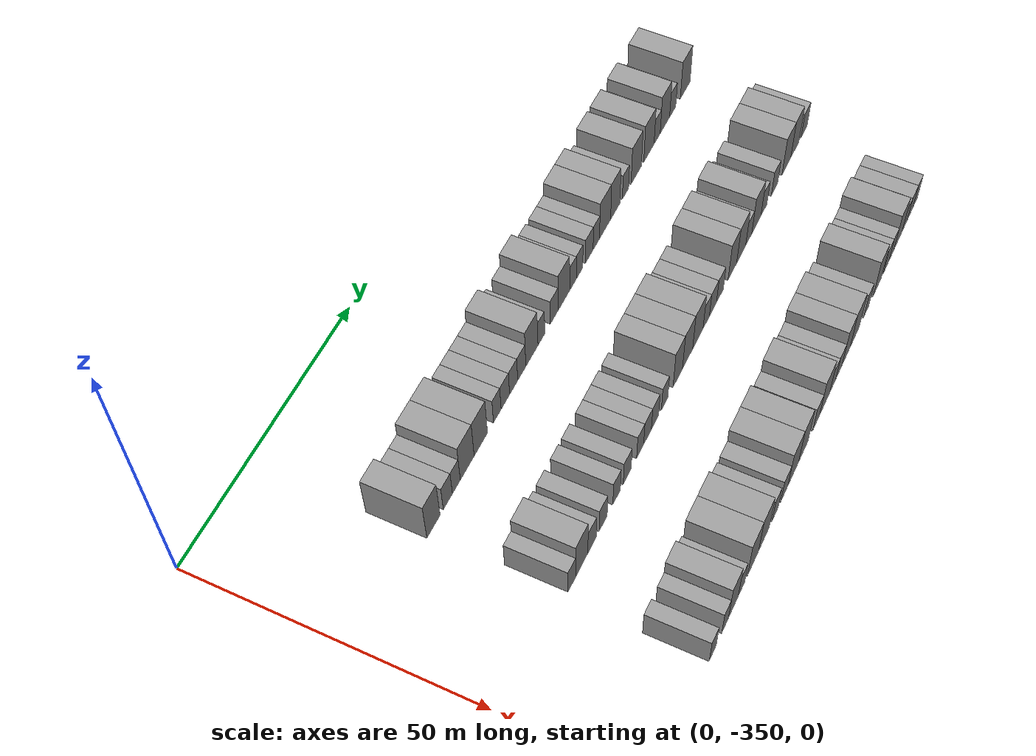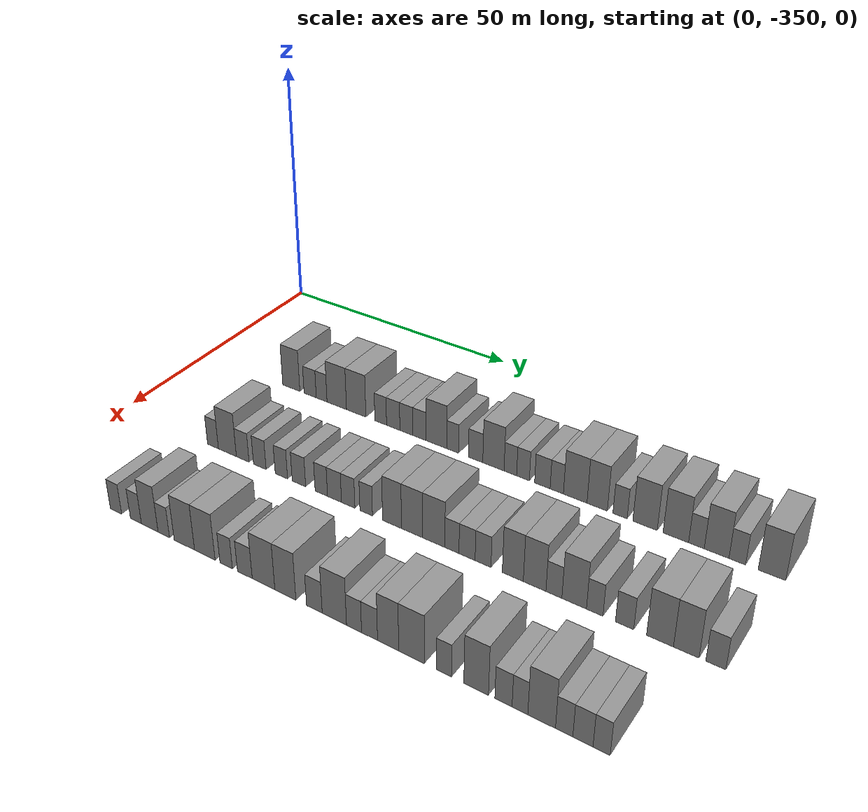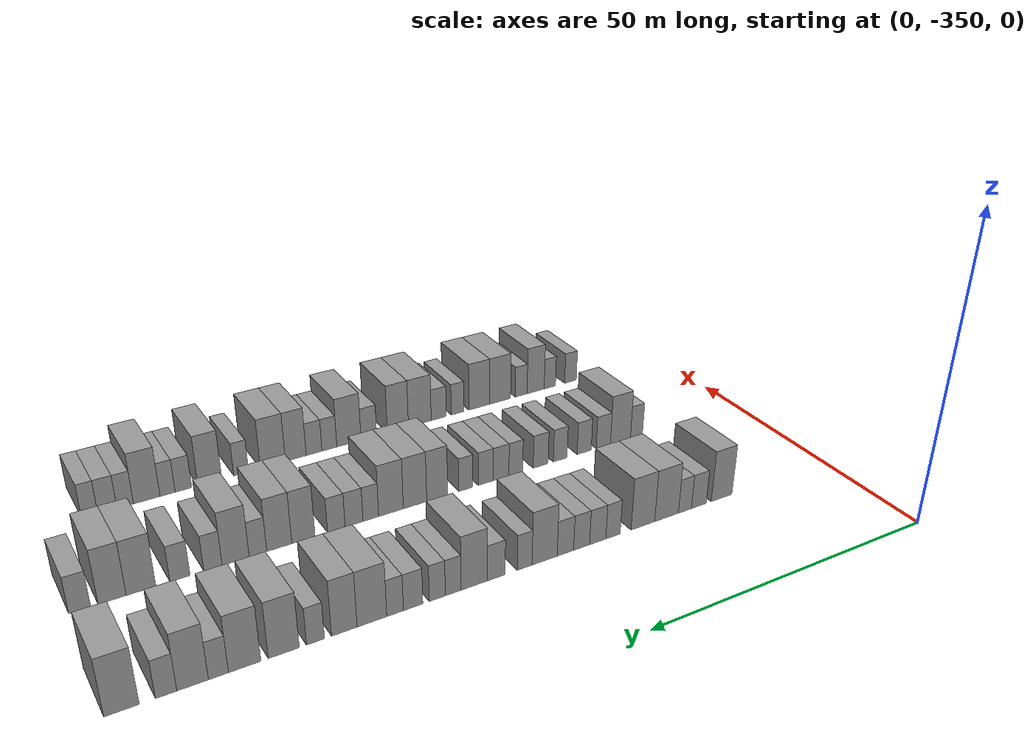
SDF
<sdf version="1.6">
 <world name="default">
  <model name="building_14">
   <static>1</static>
   <pose>25.0000 -328.6985 0 0.000000 0.000000 0.000000</pose>
   <link name="link">
    <pose>0 0 4.50 0 0 0</pose>
    <collision name="collision"><geometry><box><size>10.0000 4.1164 9.0000</size></box></geometry></collision>
    <visual name="visual">
     <cast_shadows>0</cast_shadows>
     <geometry><box><size>10.0000 4.1164 9.0000</size></box></geometry>
     <material>
      <script>
       <uri>model://grey_wall/materials/scripts</uri>
       <uri>model://grey_wall/materials/textures</uri>
       <name>vrc/grey_wall</name>
      </script>
     </material>
    </visual>
   </link>
  </model>
  <model name="building_15">
   <static>1</static>
   <pose>25.0000 -324.2007 0 0.000000 0.000000 0.000000</pose>
   <link name="link">
    <pose>0 0 3.00 0 0 0</pose>
    <collision name="collision"><geometry><box><size>10.0000 2.8793 6.0000</size></box></geometry></collision>
    <visual name="visual">
     <cast_shadows>0</cast_shadows>
     <geometry><box><size>10.0000 2.8793 6.0000</size></box></geometry>
     <material>
      <script>
       <uri>model://grey_wall/materials/scripts</uri>
       <uri>model://grey_wall/materials/textures</uri>
       <name>vrc/grey_wall</name>
      </script>
     </material>
    </visual>
   </link>
  </model>
  <model name="building_16">
   <static>1</static>
   <pose>25.0000 -321.5026 0 0.000000 0.000000 0.000000</pose>
   <link name="link">
    <pose>0 0 3.00 0 0 0</pose>
    <collision name="collision"><geometry><box><size>10.0000 2.5169 6.0000</size></box></geometry></collision>
    <visual name="visual">
     <cast_shadows>0</cast_shadows>
     <geometry><box><size>10.0000 2.5169 6.0000</size></box></geometry>
     <material>
      <script>
       <uri>model://grey_wall/materials/scripts</uri>
       <uri>model://grey_wall/materials/textures</uri>
       <name>vrc/grey_wall</name>
      </script>
     </material>
    </visual>
   </link>
  </model>
  <model name="building_17">
   <static>1</static>
   <pose>25.0000 -317.9972 0 0.000000 0.000000 0.000000</pose>
   <link name="link">
    <pose>0 0 4.50 0 0 0</pose>
    <collision name="collision"><geometry><box><size>10.0000 4.4939 9.0000</size></box></geometry></collision>
    <visual name="visual">
     <cast_shadows>0</cast_shadows>
     <geometry><box><size>10.0000 4.4939 9.0000</size></box></geometry>
     <material>
      <script>
       <uri>model://grey_wall/materials/scripts</uri>
       <uri>model://grey_wall/materials/textures</uri>
       <name>vrc/grey_wall</name>
      </script>
     </material>
    </visual>
   </link>
  </model>
  <model name="building_18">
   <static>1</static>
   <pose>25.0000 -313.5573 0 0.000000 0.000000 0.000000</pose>
   <link name="link">
    <pose>0 0 4.50 0 0 0</pose>
    <collision name="collision"><geometry><box><size>10.0000 4.3858 9.0000</size></box></geometry></collision>
    <visual name="visual">
     <cast_shadows>0</cast_shadows>
     <geometry><box><size>10.0000 4.3858 9.0000</size></box></geometry>
     <material>
      <script>
       <uri>model://grey_wall/materials/scripts</uri>
       <uri>model://grey_wall/materials/textures</uri>
       <name>vrc/grey_wall</name>
      </script>
     </material>
    </visual>
   </link>
  </model>
  <model name="building_19">
   <static>1</static>
   <pose>25.0000 -308.0744 0 0.000000 0.000000 0.000000</pose>
   <link name="link">
    <pose>0 0 3.00 0 0 0</pose>
    <collision name="collision"><geometry><box><size>10.0000 2.5801 6.0000</size></box></geometry></collision>
    <visual name="visual">
     <cast_shadows>0</cast_shadows>
     <geometry><box><size>10.0000 2.5801 6.0000</size></box></geometry>
     <material>
      <script>
       <uri>model://grey_wall/materials/scripts</uri>
       <uri>model://grey_wall/materials/textures</uri>
       <name>vrc/grey_wall</name>
      </script>
     </material>
    </visual>
   </link>
  </model>
  <model name="building_20">
   <static>1</static>
   <pose>25.0000 -305.3306 0 0.000000 0.000000 0.000000</pose>
   <link name="link">
    <pose>0 0 3.00 0 0 0</pose>
    <collision name="collision"><geometry><box><size>10.0000 2.9074 6.0000</size></box></geometry></collision>
    <visual name="visual">
     <cast_shadows>0</cast_shadows>
     <geometry><box><size>10.0000 2.9074 6.0000</size></box></geometry>
     <material>
      <script>
       <uri>model://grey_wall/materials/scripts</uri>
       <uri>model://grey_wall/materials/textures</uri>
       <name>vrc/grey_wall</name>
      </script>
     </material>
    </visual>
   </link>
  </model>
  <model name="building_21">
   <static>1</static>
   <pose>25.0000 -302.4756 0 0.000000 0.000000 0.000000</pose>
   <link name="link">
    <pose>0 0 3.00 0 0 0</pose>
    <collision name="collision"><geometry><box><size>10.0000 2.8027 6.0000</size></box></geometry></collision>
    <visual name="visual">
     <cast_shadows>0</cast_shadows>
     <geometry><box><size>10.0000 2.8027 6.0000</size></box></geometry>
     <material>
      <script>
       <uri>model://grey_wall/materials/scripts</uri>
       <uri>model://grey_wall/materials/textures</uri>
       <name>vrc/grey_wall</name>
      </script>
     </material>
    </visual>
   </link>
  </model>
  <model name="building_22">
   <static>1</static>
   <pose>25.0000 -299.6530 0 0.000000 0.000000 0.000000</pose>
   <link name="link">
    <pose>0 0 3.00 0 0 0</pose>
    <collision name="collision"><geometry><box><size>10.0000 2.8426 6.0000</size></box></geometry></collision>
    <visual name="visual">
     <cast_shadows>0</cast_shadows>
     <geometry><box><size>10.0000 2.8426 6.0000</size></box></geometry>
     <material>
      <script>
       <uri>model://grey_wall/materials/scripts</uri>
       <uri>model://grey_wall/materials/textures</uri>
       <name>vrc/grey_wall</name>
      </script>
     </material>
    </visual>
   </link>
  </model>
  <model name="building_23">
   <static>1</static>
   <pose>25.0000 -296.0908 0 0.000000 0.000000 0.000000</pose>
   <link name="link">
    <pose>0 0 4.50 0 0 0</pose>
    <collision name="collision"><geometry><box><size>10.0000 4.2818 9.0000</size></box></geometry></collision>
    <visual name="visual">
     <cast_shadows>0</cast_shadows>
     <geometry><box><size>10.0000 4.2818 9.0000</size></box></geometry>
     <material>
      <script>
       <uri>model://grey_wall/materials/scripts</uri>
       <uri>model://grey_wall/materials/textures</uri>
       <name>vrc/grey_wall</name>
      </script>
     </material>
    </visual>
   </link>
  </model>
  <model name="building_24">
   <static>1</static>
   <pose>25.0000 -292.7129 0 0.000000 0.000000 0.000000</pose>
   <link name="link">
    <pose>0 0 3.00 0 0 0</pose>
    <collision name="collision"><geometry><box><size>10.0000 2.4739 6.0000</size></box></geometry></collision>
    <visual name="visual">
     <cast_shadows>0</cast_shadows>
     <geometry><box><size>10.0000 2.4739 6.0000</size></box></geometry>
     <material>
      <script>
       <uri>model://grey_wall/materials/scripts</uri>
       <uri>model://grey_wall/materials/textures</uri>
       <name>vrc/grey_wall</name>
      </script>
     </material>
    </visual>
   </link>
  </model>
  <model name="building_25">
   <static>1</static>
   <pose>25.0000 -288.0265 0 0.000000 0.000000 0.000000</pose>
   <link name="link">
    <pose>0 0 3.00 0 0 0</pose>
    <collision name="collision"><geometry><box><size>10.0000 2.8990 6.0000</size></box></geometry></collision>
    <visual name="visual">
     <cast_shadows>0</cast_shadows>
     <geometry><box><size>10.0000 2.8990 6.0000</size></box></geometry>
     <material>
      <script>
       <uri>model://grey_wall/materials/scripts</uri>
       <uri>model://grey_wall/materials/textures</uri>
       <name>vrc/grey_wall</name>
      </script>
     </material>
    </visual>
   </link>
  </model>
  <model name="building_26">
   <static>1</static>
   <pose>25.0000 -284.4614 0 0.000000 0.000000 0.000000</pose>
   <link name="link">
    <pose>0 0 4.50 0 0 0</pose>
    <collision name="collision"><geometry><box><size>10.0000 4.2312 9.0000</size></box></geometry></collision>
    <visual name="visual">
     <cast_shadows>0</cast_shadows>
     <geometry><box><size>10.0000 4.2312 9.0000</size></box></geometry>
     <material>
      <script>
       <uri>model://grey_wall/materials/scripts</uri>
       <uri>model://grey_wall/materials/textures</uri>
       <name>vrc/grey_wall</name>
      </script>
     </material>
    </visual>
   </link>
  </model>
  <model name="building_27">
   <static>1</static>
   <pose>25.0000 -281.1152 0 0.000000 0.000000 0.000000</pose>
   <link name="link">
    <pose>0 0 3.00 0 0 0</pose>
    <collision name="collision"><geometry><box><size>10.0000 2.4614 6.0000</size></box></geometry></collision>
    <visual name="visual">
     <cast_shadows>0</cast_shadows>
     <geometry><box><size>10.0000 2.4614 6.0000</size></box></geometry>
     <material>
      <script>
       <uri>model://grey_wall/materials/scripts</uri>
       <uri>model://grey_wall/materials/textures</uri>
       <name>vrc/grey_wall</name>
      </script>
     </material>
    </visual>
   </link>
  </model>
  <model name="building_28">
   <static>1</static>
   <pose>25.0000 -278.6442 0 0.000000 0.000000 0.000000</pose>
   <link name="link">
    <pose>0 0 3.00 0 0 0</pose>
    <collision name="collision"><geometry><box><size>10.0000 2.4805 6.0000</size></box></geometry></collision>
    <visual name="visual">
     <cast_shadows>0</cast_shadows>
     <geometry><box><size>10.0000 2.4805 6.0000</size></box></geometry>
     <material>
      <script>
       <uri>model://grey_wall/materials/scripts</uri>
       <uri>model://grey_wall/materials/textures</uri>
       <name>vrc/grey_wall</name>
      </script>
     </material>
    </visual>
   </link>
  </model>
  <model name="building_29">
   <static>1</static>
   <pose>25.0000 -274.9256 0 0.000000 0.000000 0.000000</pose>
   <link name="link">
    <pose>0 0 3.00 0 0 0</pose>
    <collision name="collision"><geometry><box><size>10.0000 2.9566 6.0000</size></box></geometry></collision>
    <visual name="visual">
     <cast_shadows>0</cast_shadows>
     <geometry><box><size>10.0000 2.9566 6.0000</size></box></geometry>
     <material>
      <script>
       <uri>model://grey_wall/materials/scripts</uri>
       <uri>model://grey_wall/materials/textures</uri>
       <name>vrc/grey_wall</name>
      </script>
     </material>
    </visual>
   </link>
  </model>
  <model name="building_30">
   <static>1</static>
   <pose>25.0000 -272.1992 0 0.000000 0.000000 0.000000</pose>
   <link name="link">
    <pose>0 0 3.00 0 0 0</pose>
    <collision name="collision"><geometry><box><size>10.0000 2.4963 6.0000</size></box></geometry></collision>
    <visual name="visual">
     <cast_shadows>0</cast_shadows>
     <geometry><box><size>10.0000 2.4963 6.0000</size></box></geometry>
     <material>
      <script>
       <uri>model://grey_wall/materials/scripts</uri>
       <uri>model://grey_wall/materials/textures</uri>
       <name>vrc/grey_wall</name>
      </script>
     </material>
    </visual>
   </link>
  </model>
  <model name="building_31">
   <static>1</static>
   <pose>25.0000 -268.7673 0 0.000000 0.000000 0.000000</pose>
   <link name="link">
    <pose>0 0 4.50 0 0 0</pose>
    <collision name="collision"><geometry><box><size>10.0000 4.3674 9.0000</size></box></geometry></collision>
    <visual name="visual">
     <cast_shadows>0</cast_shadows>
     <geometry><box><size>10.0000 4.3674 9.0000</size></box></geometry>
     <material>
      <script>
       <uri>model://grey_wall/materials/scripts</uri>
       <uri>model://grey_wall/materials/textures</uri>
       <name>vrc/grey_wall</name>
      </script>
     </material>
    </visual>
   </link>
  </model>
  <model name="building_32">
   <static>1</static>
   <pose>25.0000 -264.7406 0 0.000000 0.000000 0.000000</pose>
   <link name="link">
    <pose>0 0 4.50 0 0 0</pose>
    <collision name="collision"><geometry><box><size>10.0000 3.6861 9.0000</size></box></geometry></collision>
    <visual name="visual">
     <cast_shadows>0</cast_shadows>
     <geometry><box><size>10.0000 3.6861 9.0000</size></box></geometry>
     <material>
      <script>
       <uri>model://grey_wall/materials/scripts</uri>
       <uri>model://grey_wall/materials/textures</uri>
       <name>vrc/grey_wall</name>
      </script>
     </material>
    </visual>
   </link>
  </model>
  <model name="building_33">
   <static>1</static>
   <pose>25.0000 -260.6322 0 0.000000 0.000000 0.000000</pose>
   <link name="link">
    <pose>0 0 3.00 0 0 0</pose>
    <collision name="collision"><geometry><box><size>10.0000 2.5305 6.0000</size></box></geometry></collision>
    <visual name="visual">
     <cast_shadows>0</cast_shadows>
     <geometry><box><size>10.0000 2.5305 6.0000</size></box></geometry>
     <material>
      <script>
       <uri>model://grey_wall/materials/scripts</uri>
       <uri>model://grey_wall/materials/textures</uri>
       <name>vrc/grey_wall</name>
      </script>
     </material>
    </visual>
   </link>
  </model>
  <model name="building_34">
   <static>1</static>
   <pose>25.0000 -256.2392 0 0.000000 0.000000 0.000000</pose>
   <link name="link">
    <pose>0 0 4.50 0 0 0</pose>
    <collision name="collision"><geometry><box><size>10.0000 4.2555 9.0000</size></box></geometry></collision>
    <visual name="visual">
     <cast_shadows>0</cast_shadows>
     <geometry><box><size>10.0000 4.2555 9.0000</size></box></geometry>
     <material>
      <script>
       <uri>model://grey_wall/materials/scripts</uri>
       <uri>model://grey_wall/materials/textures</uri>
       <name>vrc/grey_wall</name>
      </script>
     </material>
    </visual>
   </link>
  </model>
  <model name="building_35">
   <static>1</static>
   <pose>25.0000 -250.9483 0 0.000000 0.000000 0.000000</pose>
   <link name="link">
    <pose>0 0 4.50 0 0 0</pose>
    <collision name="collision"><geometry><box><size>10.0000 4.3264 9.0000</size></box></geometry></collision>
    <visual name="visual">
     <cast_shadows>0</cast_shadows>
     <geometry><box><size>10.0000 4.3264 9.0000</size></box></geometry>
     <material>
      <script>
       <uri>model://grey_wall/materials/scripts</uri>
       <uri>model://grey_wall/materials/textures</uri>
       <name>vrc/grey_wall</name>
      </script>
     </material>
    </visual>
   </link>
  </model>
  <model name="building_36">
   <static>1</static>
   <pose>25.0000 -247.4791 0 0.000000 0.000000 0.000000</pose>
   <link name="link">
    <pose>0 0 3.00 0 0 0</pose>
    <collision name="collision"><geometry><box><size>10.0000 2.6121 6.0000</size></box></geometry></collision>
    <visual name="visual">
     <cast_shadows>0</cast_shadows>
     <geometry><box><size>10.0000 2.6121 6.0000</size></box></geometry>
     <material>
      <script>
       <uri>model://grey_wall/materials/scripts</uri>
       <uri>model://grey_wall/materials/textures</uri>
       <name>vrc/grey_wall</name>
      </script>
     </material>
    </visual>
   </link>
  </model>
  <model name="building_37">
   <static>1</static>
   <pose>25.0000 -244.1470 0 0.000000 0.000000 0.000000</pose>
   <link name="link">
    <pose>0 0 4.50 0 0 0</pose>
    <collision name="collision"><geometry><box><size>10.0000 4.0521 9.0000</size></box></geometry></collision>
    <visual name="visual">
     <cast_shadows>0</cast_shadows>
     <geometry><box><size>10.0000 4.0521 9.0000</size></box></geometry>
     <material>
      <script>
       <uri>model://grey_wall/materials/scripts</uri>
       <uri>model://grey_wall/materials/textures</uri>
       <name>vrc/grey_wall</name>
      </script>
     </material>
    </visual>
   </link>
  </model>
  <model name="building_38">
   <static>1</static>
   <pose>25.0000 -240.7770 0 0.000000 0.000000 0.000000</pose>
   <link name="link">
    <pose>0 0 3.00 0 0 0</pose>
    <collision name="collision"><geometry><box><size>10.0000 2.6880 6.0000</size></box></geometry></collision>
    <visual name="visual">
     <cast_shadows>0</cast_shadows>
     <geometry><box><size>10.0000 2.6880 6.0000</size></box></geometry>
     <material>
      <script>
       <uri>model://grey_wall/materials/scripts</uri>
       <uri>model://grey_wall/materials/textures</uri>
       <name>vrc/grey_wall</name>
      </script>
     </material>
    </visual>
   </link>
  </model>
  <model name="building_39">
   <static>1</static>
   <pose>25.0000 -235.2704 0 0.000000 0.000000 0.000000</pose>
   <link name="link">
    <pose>0 0 4.50 0 0 0</pose>
    <collision name="collision"><geometry><box><size>10.0000 4.3251 9.0000</size></box></geometry></collision>
    <visual name="visual">
     <cast_shadows>0</cast_shadows>
     <geometry><box><size>10.0000 4.3251 9.0000</size></box></geometry>
     <material>
      <script>
       <uri>model://grey_wall/materials/scripts</uri>
       <uri>model://grey_wall/materials/textures</uri>
       <name>vrc/grey_wall</name>
      </script>
     </material>
    </visual>
   </link>
  </model>
  <model name="building_204">
   <static>1</static>
   <pose>47.0000 -328.5744 0 0.000000 0.000000 0.000000</pose>
   <link name="link">
    <pose>0 0 3.00 0 0 0</pose>
    <collision name="collision"><geometry><box><size>10.0000 2.5163 6.0000</size></box></geometry></collision>
    <visual name="visual">
     <cast_shadows>0</cast_shadows>
     <geometry><box><size>10.0000 2.5163 6.0000</size></box></geometry>
     <material>
      <script>
       <uri>model://grey_wall/materials/scripts</uri>
       <uri>model://grey_wall/materials/textures</uri>
       <name>vrc/grey_wall</name>
      </script>
     </material>
    </visual>
   </link>
  </model>
  <model name="building_205">
   <static>1</static>
   <pose>47.0000 -325.2484 0 0.000000 0.000000 0.000000</pose>
   <link name="link">
    <pose>0 0 4.50 0 0 0</pose>
    <collision name="collision"><geometry><box><size>10.0000 4.1357 9.0000</size></box></geometry></collision>
    <visual name="visual">
     <cast_shadows>0</cast_shadows>
     <geometry><box><size>10.0000 4.1357 9.0000</size></box></geometry>
     <material>
      <script>
       <uri>model://grey_wall/materials/scripts</uri>
       <uri>model://grey_wall/materials/textures</uri>
       <name>vrc/grey_wall</name>
      </script>
     </material>
    </visual>
   </link>
  </model>
  <model name="building_206">
   <static>1</static>
   <pose>47.0000 -321.7413 0 0.000000 0.000000 0.000000</pose>
   <link name="link">
    <pose>0 0 3.00 0 0 0</pose>
    <collision name="collision"><geometry><box><size>10.0000 2.8787 6.0000</size></box></geometry></collision>
    <visual name="visual">
     <cast_shadows>0</cast_shadows>
     <geometry><box><size>10.0000 2.8787 6.0000</size></box></geometry>
     <material>
      <script>
       <uri>model://grey_wall/materials/scripts</uri>
       <uri>model://grey_wall/materials/textures</uri>
       <name>vrc/grey_wall</name>
      </script>
     </material>
    </visual>
   </link>
  </model>
  <model name="building_207">
   <static>1</static>
   <pose>47.0000 -317.8992 0 0.000000 0.000000 0.000000</pose>
   <link name="link">
    <pose>0 0 3.00 0 0 0</pose>
    <collision name="collision"><geometry><box><size>10.0000 2.8054 6.0000</size></box></geometry></collision>
    <visual name="visual">
     <cast_shadows>0</cast_shadows>
     <geometry><box><size>10.0000 2.8054 6.0000</size></box></geometry>
     <material>
      <script>
       <uri>model://grey_wall/materials/scripts</uri>
       <uri>model://grey_wall/materials/textures</uri>
       <name>vrc/grey_wall</name>
      </script>
     </material>
    </visual>
   </link>
  </model>
  <model name="building_208">
   <static>1</static>
   <pose>47.0000 -313.1531 0 0.000000 0.000000 0.000000</pose>
   <link name="link">
    <pose>0 0 3.00 0 0 0</pose>
    <collision name="collision"><geometry><box><size>10.0000 2.6868 6.0000</size></box></geometry></collision>
    <visual name="visual">
     <cast_shadows>0</cast_shadows>
     <geometry><box><size>10.0000 2.6868 6.0000</size></box></geometry>
     <material>
      <script>
       <uri>model://grey_wall/materials/scripts</uri>
       <uri>model://grey_wall/materials/textures</uri>
       <name>vrc/grey_wall</name>
      </script>
     </material>
    </visual>
   </link>
  </model>
  <model name="building_209">
   <static>1</static>
   <pose>47.0000 -309.3720 0 0.000000 0.000000 0.000000</pose>
   <link name="link">
    <pose>0 0 3.00 0 0 0</pose>
    <collision name="collision"><geometry><box><size>10.0000 2.8755 6.0000</size></box></geometry></collision>
    <visual name="visual">
     <cast_shadows>0</cast_shadows>
     <geometry><box><size>10.0000 2.8755 6.0000</size></box></geometry>
     <material>
      <script>
       <uri>model://grey_wall/materials/scripts</uri>
       <uri>model://grey_wall/materials/textures</uri>
       <name>vrc/grey_wall</name>
      </script>
     </material>
    </visual>
   </link>
  </model>
  <model name="building_210">
   <static>1</static>
   <pose>47.0000 -304.6387 0 0.000000 0.000000 0.000000</pose>
   <link name="link">
    <pose>0 0 3.00 0 0 0</pose>
    <collision name="collision"><geometry><box><size>10.0000 2.5910 6.0000</size></box></geometry></collision>
    <visual name="visual">
     <cast_shadows>0</cast_shadows>
     <geometry><box><size>10.0000 2.5910 6.0000</size></box></geometry>
     <material>
      <script>
       <uri>model://grey_wall/materials/scripts</uri>
       <uri>model://grey_wall/materials/textures</uri>
       <name>vrc/grey_wall</name>
      </script>
     </material>
    </visual>
   </link>
  </model>
  <model name="building_211">
   <static>1</static>
   <pose>47.0000 -301.9009 0 0.000000 0.000000 0.000000</pose>
   <link name="link">
    <pose>0 0 3.00 0 0 0</pose>
    <collision name="collision"><geometry><box><size>10.0000 2.8846 6.0000</size></box></geometry></collision>
    <visual name="visual">
     <cast_shadows>0</cast_shadows>
     <geometry><box><size>10.0000 2.8846 6.0000</size></box></geometry>
     <material>
      <script>
       <uri>model://grey_wall/materials/scripts</uri>
       <uri>model://grey_wall/materials/textures</uri>
       <name>vrc/grey_wall</name>
      </script>
     </material>
    </visual>
   </link>
  </model>
  <model name="building_212">
   <static>1</static>
   <pose>47.0000 -299.0855 0 0.000000 0.000000 0.000000</pose>
   <link name="link">
    <pose>0 0 3.00 0 0 0</pose>
    <collision name="collision"><geometry><box><size>10.0000 2.7462 6.0000</size></box></geometry></collision>
    <visual name="visual">
     <cast_shadows>0</cast_shadows>
     <geometry><box><size>10.0000 2.7462 6.0000</size></box></geometry>
     <material>
      <script>
       <uri>model://grey_wall/materials/scripts</uri>
       <uri>model://grey_wall/materials/textures</uri>
       <name>vrc/grey_wall</name>
      </script>
     </material>
    </visual>
   </link>
  </model>
  <model name="building_213">
   <static>1</static>
   <pose>47.0000 -295.4514 0 0.000000 0.000000 0.000000</pose>
   <link name="link">
    <pose>0 0 3.00 0 0 0</pose>
    <collision name="collision"><geometry><box><size>10.0000 2.5219 6.0000</size></box></geometry></collision>
    <visual name="visual">
     <cast_shadows>0</cast_shadows>
     <geometry><box><size>10.0000 2.5219 6.0000</size></box></geometry>
     <material>
      <script>
       <uri>model://grey_wall/materials/scripts</uri>
       <uri>model://grey_wall/materials/textures</uri>
       <name>vrc/grey_wall</name>
      </script>
     </material>
    </visual>
   </link>
  </model>
  <model name="building_214">
   <static>1</static>
   <pose>47.0000 -290.3478 0 0.000000 0.000000 0.000000</pose>
   <link name="link">
    <pose>0 0 4.50 0 0 0</pose>
    <collision name="collision"><geometry><box><size>10.0000 3.6854 9.0000</size></box></geometry></collision>
    <visual name="visual">
     <cast_shadows>0</cast_shadows>
     <geometry><box><size>10.0000 3.6854 9.0000</size></box></geometry>
     <material>
      <script>
       <uri>model://grey_wall/materials/scripts</uri>
       <uri>model://grey_wall/materials/textures</uri>
       <name>vrc/grey_wall</name>
      </script>
     </material>
    </visual>
   </link>
  </model>
  <model name="building_215">
   <static>1</static>
   <pose>47.0000 -286.4826 0 0.000000 0.000000 0.000000</pose>
   <link name="link">
    <pose>0 0 4.50 0 0 0</pose>
    <collision name="collision"><geometry><box><size>10.0000 4.0450 9.0000</size></box></geometry></collision>
    <visual name="visual">
     <cast_shadows>0</cast_shadows>
     <geometry><box><size>10.0000 4.0450 9.0000</size></box></geometry>
     <material>
      <script>
       <uri>model://grey_wall/materials/scripts</uri>
       <uri>model://grey_wall/materials/textures</uri>
       <name>vrc/grey_wall</name>
      </script>
     </material>
    </visual>
   </link>
  </model>
  <model name="building_216">
   <static>1</static>
   <pose>47.0000 -282.3678 0 0.000000 0.000000 0.000000</pose>
   <link name="link">
    <pose>0 0 4.50 0 0 0</pose>
    <collision name="collision"><geometry><box><size>10.0000 4.1846 9.0000</size></box></geometry></collision>
    <visual name="visual">
     <cast_shadows>0</cast_shadows>
     <geometry><box><size>10.0000 4.1846 9.0000</size></box></geometry>
     <material>
      <script>
       <uri>model://grey_wall/materials/scripts</uri>
       <uri>model://grey_wall/materials/textures</uri>
       <name>vrc/grey_wall</name>
      </script>
     </material>
    </visual>
   </link>
  </model>
  <model name="building_217">
   <static>1</static>
   <pose>47.0000 -278.9745 0 0.000000 0.000000 0.000000</pose>
   <link name="link">
    <pose>0 0 3.00 0 0 0</pose>
    <collision name="collision"><geometry><box><size>10.0000 2.6021 6.0000</size></box></geometry></collision>
    <visual name="visual">
     <cast_shadows>0</cast_shadows>
     <geometry><box><size>10.0000 2.6021 6.0000</size></box></geometry>
     <material>
      <script>
       <uri>model://grey_wall/materials/scripts</uri>
       <uri>model://grey_wall/materials/textures</uri>
       <name>vrc/grey_wall</name>
      </script>
     </material>
    </visual>
   </link>
  </model>
  <model name="building_218">
   <static>1</static>
   <pose>47.0000 -276.2022 0 0.000000 0.000000 0.000000</pose>
   <link name="link">
    <pose>0 0 3.00 0 0 0</pose>
    <collision name="collision"><geometry><box><size>10.0000 2.9424 6.0000</size></box></geometry></collision>
    <visual name="visual">
     <cast_shadows>0</cast_shadows>
     <geometry><box><size>10.0000 2.9424 6.0000</size></box></geometry>
     <material>
      <script>
       <uri>model://grey_wall/materials/scripts</uri>
       <uri>model://grey_wall/materials/textures</uri>
       <name>vrc/grey_wall</name>
      </script>
     </material>
    </visual>
   </link>
  </model>
  <model name="building_219">
   <static>1</static>
   <pose>47.0000 -273.3032 0 0.000000 0.000000 0.000000</pose>
   <link name="link">
    <pose>0 0 3.00 0 0 0</pose>
    <collision name="collision"><geometry><box><size>10.0000 2.8556 6.0000</size></box></geometry></collision>
    <visual name="visual">
     <cast_shadows>0</cast_shadows>
     <geometry><box><size>10.0000 2.8556 6.0000</size></box></geometry>
     <material>
      <script>
       <uri>model://grey_wall/materials/scripts</uri>
       <uri>model://grey_wall/materials/textures</uri>
       <name>vrc/grey_wall</name>
      </script>
     </material>
    </visual>
   </link>
  </model>
  <model name="building_220">
   <static>1</static>
   <pose>47.0000 -268.0409 0 0.000000 0.000000 0.000000</pose>
   <link name="link">
    <pose>0 0 4.50 0 0 0</pose>
    <collision name="collision"><geometry><box><size>10.0000 3.6691 9.0000</size></box></geometry></collision>
    <visual name="visual">
     <cast_shadows>0</cast_shadows>
     <geometry><box><size>10.0000 3.6691 9.0000</size></box></geometry>
     <material>
      <script>
       <uri>model://grey_wall/materials/scripts</uri>
       <uri>model://grey_wall/materials/textures</uri>
       <name>vrc/grey_wall</name>
      </script>
     </material>
    </visual>
   </link>
  </model>
  <model name="building_221">
   <static>1</static>
   <pose>47.0000 -264.2662 0 0.000000 0.000000 0.000000</pose>
   <link name="link">
    <pose>0 0 4.50 0 0 0</pose>
    <collision name="collision"><geometry><box><size>10.0000 3.8802 9.0000</size></box></geometry></collision>
    <visual name="visual">
     <cast_shadows>0</cast_shadows>
     <geometry><box><size>10.0000 3.8802 9.0000</size></box></geometry>
     <material>
      <script>
       <uri>model://grey_wall/materials/scripts</uri>
       <uri>model://grey_wall/materials/textures</uri>
       <name>vrc/grey_wall</name>
      </script>
     </material>
    </visual>
   </link>
  </model>
  <model name="building_222">
   <static>1</static>
   <pose>47.0000 -260.9822 0 0.000000 0.000000 0.000000</pose>
   <link name="link">
    <pose>0 0 3.00 0 0 0</pose>
    <collision name="collision"><geometry><box><size>10.0000 2.6878 6.0000</size></box></geometry></collision>
    <visual name="visual">
     <cast_shadows>0</cast_shadows>
     <geometry><box><size>10.0000 2.6878 6.0000</size></box></geometry>
     <material>
      <script>
       <uri>model://grey_wall/materials/scripts</uri>
       <uri>model://grey_wall/materials/textures</uri>
       <name>vrc/grey_wall</name>
      </script>
     </material>
    </visual>
   </link>
  </model>
  <model name="building_223">
   <static>1</static>
   <pose>47.0000 -257.6058 0 0.000000 0.000000 0.000000</pose>
   <link name="link">
    <pose>0 0 4.50 0 0 0</pose>
    <collision name="collision"><geometry><box><size>10.0000 4.0650 9.0000</size></box></geometry></collision>
    <visual name="visual">
     <cast_shadows>0</cast_shadows>
     <geometry><box><size>10.0000 4.0650 9.0000</size></box></geometry>
     <material>
      <script>
       <uri>model://grey_wall/materials/scripts</uri>
       <uri>model://grey_wall/materials/textures</uri>
       <name>vrc/grey_wall</name>
      </script>
     </material>
    </visual>
   </link>
  </model>
  <model name="building_224">
   <static>1</static>
   <pose>47.0000 -254.2306 0 0.000000 0.000000 0.000000</pose>
   <link name="link">
    <pose>0 0 3.00 0 0 0</pose>
    <collision name="collision"><geometry><box><size>10.0000 2.6854 6.0000</size></box></geometry></collision>
    <visual name="visual">
     <cast_shadows>0</cast_shadows>
     <geometry><box><size>10.0000 2.6854 6.0000</size></box></geometry>
     <material>
      <script>
       <uri>model://grey_wall/materials/scripts</uri>
       <uri>model://grey_wall/materials/textures</uri>
       <name>vrc/grey_wall</name>
      </script>
     </material>
    </visual>
   </link>
  </model>
  <model name="building_225">
   <static>1</static>
   <pose>47.0000 -249.4381 0 0.000000 0.000000 0.000000</pose>
   <link name="link">
    <pose>0 0 3.00 0 0 0</pose>
    <collision name="collision"><geometry><box><size>10.0000 2.8995 6.0000</size></box></geometry></collision>
    <visual name="visual">
     <cast_shadows>0</cast_shadows>
     <geometry><box><size>10.0000 2.8995 6.0000</size></box></geometry>
     <material>
      <script>
       <uri>model://grey_wall/materials/scripts</uri>
       <uri>model://grey_wall/materials/textures</uri>
       <name>vrc/grey_wall</name>
      </script>
     </material>
    </visual>
   </link>
  </model>
  <model name="building_226">
   <static>1</static>
   <pose>47.0000 -243.9204 0 0.000000 0.000000 0.000000</pose>
   <link name="link">
    <pose>0 0 4.50 0 0 0</pose>
    <collision name="collision"><geometry><box><size>10.0000 4.1358 9.0000</size></box></geometry></collision>
    <visual name="visual">
     <cast_shadows>0</cast_shadows>
     <geometry><box><size>10.0000 4.1358 9.0000</size></box></geometry>
     <material>
      <script>
       <uri>model://grey_wall/materials/scripts</uri>
       <uri>model://grey_wall/materials/textures</uri>
       <name>vrc/grey_wall</name>
      </script>
     </material>
    </visual>
   </link>
  </model>
  <model name="building_227">
   <static>1</static>
   <pose>47.0000 -239.9258 0 0.000000 0.000000 0.000000</pose>
   <link name="link">
    <pose>0 0 4.50 0 0 0</pose>
    <collision name="collision"><geometry><box><size>10.0000 3.8535 9.0000</size></box></geometry></collision>
    <visual name="visual">
     <cast_shadows>0</cast_shadows>
     <geometry><box><size>10.0000 3.8535 9.0000</size></box></geometry>
     <material>
      <script>
       <uri>model://grey_wall/materials/scripts</uri>
       <uri>model://grey_wall/materials/textures</uri>
       <name>vrc/grey_wall</name>
      </script>
     </material>
    </visual>
   </link>
  </model>
  <model name="building_228">
   <static>1</static>
   <pose>47.0000 -235.5267 0 0.000000 0.000000 0.000000</pose>
   <link name="link">
    <pose>0 0 3.00 0 0 0</pose>
    <collision name="collision"><geometry><box><size>10.0000 2.9448 6.0000</size></box></geometry></collision>
    <visual name="visual">
     <cast_shadows>0</cast_shadows>
     <geometry><box><size>10.0000 2.9448 6.0000</size></box></geometry>
     <material>
      <script>
       <uri>model://grey_wall/materials/scripts</uri>
       <uri>model://grey_wall/materials/textures</uri>
       <name>vrc/grey_wall</name>
      </script>
     </material>
    </visual>
   </link>
  </model>
  <model name="building_387">
   <static>1</static>
   <pose>69.0000 -329.8104 0 0.000000 0.000000 0.000000</pose>
   <link name="link">
    <pose>0 0 3.00 0 0 0</pose>
    <collision name="collision"><geometry><box><size>10.0000 2.5586 6.0000</size></box></geometry></collision>
    <visual name="visual">
     <cast_shadows>0</cast_shadows>
     <geometry><box><size>10.0000 2.5586 6.0000</size></box></geometry>
     <material>
      <script>
       <uri>model://grey_wall/materials/scripts</uri>
       <uri>model://grey_wall/materials/textures</uri>
       <name>vrc/grey_wall</name>
      </script>
     </material>
    </visual>
   </link>
  </model>
  <model name="building_388">
   <static>1</static>
   <pose>69.0000 -325.3115 0 0.000000 0.000000 0.000000</pose>
   <link name="link">
    <pose>0 0 3.00 0 0 0</pose>
    <collision name="collision"><geometry><box><size>10.0000 2.4393 6.0000</size></box></geometry></collision>
    <visual name="visual">
     <cast_shadows>0</cast_shadows>
     <geometry><box><size>10.0000 2.4393 6.0000</size></box></geometry>
     <material>
      <script>
       <uri>model://grey_wall/materials/scripts</uri>
       <uri>model://grey_wall/materials/textures</uri>
       <name>vrc/grey_wall</name>
      </script>
     </material>
    </visual>
   </link>
  </model>
  <model name="building_389">
   <static>1</static>
   <pose>69.0000 -322.2598 0 0.000000 0.000000 0.000000</pose>
   <link name="link">
    <pose>0 0 4.50 0 0 0</pose>
    <collision name="collision"><geometry><box><size>10.0000 3.6642 9.0000</size></box></geometry></collision>
    <visual name="visual">
     <cast_shadows>0</cast_shadows>
     <geometry><box><size>10.0000 3.6642 9.0000</size></box></geometry>
     <material>
      <script>
       <uri>model://grey_wall/materials/scripts</uri>
       <uri>model://grey_wall/materials/textures</uri>
       <name>vrc/grey_wall</name>
      </script>
     </material>
    </visual>
   </link>
  </model>
  <model name="building_390">
   <static>1</static>
   <pose>69.0000 -319.1810 0 0.000000 0.000000 0.000000</pose>
   <link name="link">
    <pose>0 0 3.00 0 0 0</pose>
    <collision name="collision"><geometry><box><size>10.0000 2.4932 6.0000</size></box></geometry></collision>
    <visual name="visual">
     <cast_shadows>0</cast_shadows>
     <geometry><box><size>10.0000 2.4932 6.0000</size></box></geometry>
     <material>
      <script>
       <uri>model://grey_wall/materials/scripts</uri>
       <uri>model://grey_wall/materials/textures</uri>
       <name>vrc/grey_wall</name>
      </script>
     </material>
    </visual>
   </link>
  </model>
  <model name="building_391">
   <static>1</static>
   <pose>69.0000 -314.7797 0 0.000000 0.000000 0.000000</pose>
   <link name="link">
    <pose>0 0 4.50 0 0 0</pose>
    <collision name="collision"><geometry><box><size>10.0000 4.3094 9.0000</size></box></geometry></collision>
    <visual name="visual">
     <cast_shadows>0</cast_shadows>
     <geometry><box><size>10.0000 4.3094 9.0000</size></box></geometry>
     <material>
      <script>
       <uri>model://grey_wall/materials/scripts</uri>
       <uri>model://grey_wall/materials/textures</uri>
       <name>vrc/grey_wall</name>
      </script>
     </material>
    </visual>
   </link>
  </model>
  <model name="building_392">
   <static>1</static>
   <pose>69.0000 -310.4899 0 0.000000 0.000000 0.000000</pose>
   <link name="link">
    <pose>0 0 4.50 0 0 0</pose>
    <collision name="collision"><geometry><box><size>10.0000 4.2702 9.0000</size></box></geometry></collision>
    <visual name="visual">
     <cast_shadows>0</cast_shadows>
     <geometry><box><size>10.0000 4.2702 9.0000</size></box></geometry>
     <material>
      <script>
       <uri>model://grey_wall/materials/scripts</uri>
       <uri>model://grey_wall/materials/textures</uri>
       <name>vrc/grey_wall</name>
      </script>
     </material>
    </visual>
   </link>
  </model>
  <model name="building_393">
   <static>1</static>
   <pose>69.0000 -306.0894 0 0.000000 0.000000 0.000000</pose>
   <link name="link">
    <pose>0 0 3.00 0 0 0</pose>
    <collision name="collision"><geometry><box><size>10.0000 2.5307 6.0000</size></box></geometry></collision>
    <visual name="visual">
     <cast_shadows>0</cast_shadows>
     <geometry><box><size>10.0000 2.5307 6.0000</size></box></geometry>
     <material>
      <script>
       <uri>model://grey_wall/materials/scripts</uri>
       <uri>model://grey_wall/materials/textures</uri>
       <name>vrc/grey_wall</name>
      </script>
     </material>
    </visual>
   </link>
  </model>
  <model name="building_394">
   <static>1</static>
   <pose>69.0000 -302.3524 0 0.000000 0.000000 0.000000</pose>
   <link name="link">
    <pose>0 0 3.00 0 0 0</pose>
    <collision name="collision"><geometry><box><size>10.0000 2.9433 6.0000</size></box></geometry></collision>
    <visual name="visual">
     <cast_shadows>0</cast_shadows>
     <geometry><box><size>10.0000 2.9433 6.0000</size></box></geometry>
     <material>
      <script>
       <uri>model://grey_wall/materials/scripts</uri>
       <uri>model://grey_wall/materials/textures</uri>
       <name>vrc/grey_wall</name>
      </script>
     </material>
    </visual>
   </link>
  </model>
  <model name="building_395">
   <static>1</static>
   <pose>69.0000 -298.6697 0 0.000000 0.000000 0.000000</pose>
   <link name="link">
    <pose>0 0 4.50 0 0 0</pose>
    <collision name="collision"><geometry><box><size>10.0000 4.4222 9.0000</size></box></geometry></collision>
    <visual name="visual">
     <cast_shadows>0</cast_shadows>
     <geometry><box><size>10.0000 4.4222 9.0000</size></box></geometry>
     <material>
      <script>
       <uri>model://grey_wall/materials/scripts</uri>
       <uri>model://grey_wall/materials/textures</uri>
       <name>vrc/grey_wall</name>
      </script>
     </material>
    </visual>
   </link>
  </model>
  <model name="building_396">
   <static>1</static>
   <pose>69.0000 -294.4493 0 0.000000 0.000000 0.000000</pose>
   <link name="link">
    <pose>0 0 4.50 0 0 0</pose>
    <collision name="collision"><geometry><box><size>10.0000 4.0186 9.0000</size></box></geometry></collision>
    <visual name="visual">
     <cast_shadows>0</cast_shadows>
     <geometry><box><size>10.0000 4.0186 9.0000</size></box></geometry>
     <material>
      <script>
       <uri>model://grey_wall/materials/scripts</uri>
       <uri>model://grey_wall/materials/textures</uri>
       <name>vrc/grey_wall</name>
      </script>
     </material>
    </visual>
   </link>
  </model>
  <model name="building_397">
   <static>1</static>
   <pose>69.0000 -288.9865 0 0.000000 0.000000 0.000000</pose>
   <link name="link">
    <pose>0 0 3.00 0 0 0</pose>
    <collision name="collision"><geometry><box><size>10.0000 2.9070 6.0000</size></box></geometry></collision>
    <visual name="visual">
     <cast_shadows>0</cast_shadows>
     <geometry><box><size>10.0000 2.9070 6.0000</size></box></geometry>
     <material>
      <script>
       <uri>model://grey_wall/materials/scripts</uri>
       <uri>model://grey_wall/materials/textures</uri>
       <name>vrc/grey_wall</name>
      </script>
     </material>
    </visual>
   </link>
  </model>
  <model name="building_398">
   <static>1</static>
   <pose>69.0000 -285.3187 0 0.000000 0.000000 0.000000</pose>
   <link name="link">
    <pose>0 0 4.50 0 0 0</pose>
    <collision name="collision"><geometry><box><size>10.0000 4.4286 9.0000</size></box></geometry></collision>
    <visual name="visual">
     <cast_shadows>0</cast_shadows>
     <geometry><box><size>10.0000 4.4286 9.0000</size></box></geometry>
     <material>
      <script>
       <uri>model://grey_wall/materials/scripts</uri>
       <uri>model://grey_wall/materials/textures</uri>
       <name>vrc/grey_wall</name>
      </script>
     </material>
    </visual>
   </link>
  </model>
  <model name="building_399">
   <static>1</static>
   <pose>69.0000 -281.7624 0 0.000000 0.000000 0.000000</pose>
   <link name="link">
    <pose>0 0 3.00 0 0 0</pose>
    <collision name="collision"><geometry><box><size>10.0000 2.6841 6.0000</size></box></geometry></collision>
    <visual name="visual">
     <cast_shadows>0</cast_shadows>
     <geometry><box><size>10.0000 2.6841 6.0000</size></box></geometry>
     <material>
      <script>
       <uri>model://grey_wall/materials/scripts</uri>
       <uri>model://grey_wall/materials/textures</uri>
       <name>vrc/grey_wall</name>
      </script>
     </material>
    </visual>
   </link>
  </model>
  <model name="building_400">
   <static>1</static>
   <pose>69.0000 -279.0154 0 0.000000 0.000000 0.000000</pose>
   <link name="link">
    <pose>0 0 3.00 0 0 0</pose>
    <collision name="collision"><geometry><box><size>10.0000 2.8099 6.0000</size></box></geometry></collision>
    <visual name="visual">
     <cast_shadows>0</cast_shadows>
     <geometry><box><size>10.0000 2.8099 6.0000</size></box></geometry>
     <material>
      <script>
       <uri>model://grey_wall/materials/scripts</uri>
       <uri>model://grey_wall/materials/textures</uri>
       <name>vrc/grey_wall</name>
      </script>
     </material>
    </visual>
   </link>
  </model>
  <model name="building_401">
   <static>1</static>
   <pose>69.0000 -275.7851 0 0.000000 0.000000 0.000000</pose>
   <link name="link">
    <pose>0 0 4.50 0 0 0</pose>
    <collision name="collision"><geometry><box><size>10.0000 3.6508 9.0000</size></box></geometry></collision>
    <visual name="visual">
     <cast_shadows>0</cast_shadows>
     <geometry><box><size>10.0000 3.6508 9.0000</size></box></geometry>
     <material>
      <script>
       <uri>model://grey_wall/materials/scripts</uri>
       <uri>model://grey_wall/materials/textures</uri>
       <name>vrc/grey_wall</name>
      </script>
     </material>
    </visual>
   </link>
  </model>
  <model name="building_402">
   <static>1</static>
   <pose>69.0000 -271.7953 0 0.000000 0.000000 0.000000</pose>
   <link name="link">
    <pose>0 0 4.50 0 0 0</pose>
    <collision name="collision"><geometry><box><size>10.0000 4.3286 9.0000</size></box></geometry></collision>
    <visual name="visual">
     <cast_shadows>0</cast_shadows>
     <geometry><box><size>10.0000 4.3286 9.0000</size></box></geometry>
     <material>
      <script>
       <uri>model://grey_wall/materials/scripts</uri>
       <uri>model://grey_wall/materials/textures</uri>
       <name>vrc/grey_wall</name>
      </script>
     </material>
    </visual>
   </link>
  </model>
  <model name="building_403">
   <static>1</static>
   <pose>69.0000 -266.3912 0 0.000000 0.000000 0.000000</pose>
   <link name="link">
    <pose>0 0 3.00 0 0 0</pose>
    <collision name="collision"><geometry><box><size>10.0000 2.4796 6.0000</size></box></geometry></collision>
    <visual name="visual">
     <cast_shadows>0</cast_shadows>
     <geometry><box><size>10.0000 2.4796 6.0000</size></box></geometry>
     <material>
      <script>
       <uri>model://grey_wall/materials/scripts</uri>
       <uri>model://grey_wall/materials/textures</uri>
       <name>vrc/grey_wall</name>
      </script>
     </material>
    </visual>
   </link>
  </model>
  <model name="building_404">
   <static>1</static>
   <pose>69.0000 -261.1895 0 0.000000 0.000000 0.000000</pose>
   <link name="link">
    <pose>0 0 4.50 0 0 0</pose>
    <collision name="collision"><geometry><box><size>10.0000 3.9238 9.0000</size></box></geometry></collision>
    <visual name="visual">
     <cast_shadows>0</cast_shadows>
     <geometry><box><size>10.0000 3.9238 9.0000</size></box></geometry>
     <material>
      <script>
       <uri>model://grey_wall/materials/scripts</uri>
       <uri>model://grey_wall/materials/textures</uri>
       <name>vrc/grey_wall</name>
      </script>
     </material>
    </visual>
   </link>
  </model>
  <model name="building_405">
   <static>1</static>
   <pose>69.0000 -256.8933 0 0.000000 0.000000 0.000000</pose>
   <link name="link">
    <pose>0 0 3.00 0 0 0</pose>
    <collision name="collision"><geometry><box><size>10.0000 2.6687 6.0000</size></box></geometry></collision>
    <visual name="visual">
     <cast_shadows>0</cast_shadows>
     <geometry><box><size>10.0000 2.6687 6.0000</size></box></geometry>
     <material>
      <script>
       <uri>model://grey_wall/materials/scripts</uri>
       <uri>model://grey_wall/materials/textures</uri>
       <name>vrc/grey_wall</name>
      </script>
     </material>
    </visual>
   </link>
  </model>
  <model name="building_406">
   <static>1</static>
   <pose>69.0000 -254.3530 0 0.000000 0.000000 0.000000</pose>
   <link name="link">
    <pose>0 0 3.00 0 0 0</pose>
    <collision name="collision"><geometry><box><size>10.0000 2.4118 6.0000</size></box></geometry></collision>
    <visual name="visual">
     <cast_shadows>0</cast_shadows>
     <geometry><box><size>10.0000 2.4118 6.0000</size></box></geometry>
     <material>
      <script>
       <uri>model://grey_wall/materials/scripts</uri>
       <uri>model://grey_wall/materials/textures</uri>
       <name>vrc/grey_wall</name>
      </script>
     </material>
    </visual>
   </link>
  </model>
  <model name="building_407">
   <static>1</static>
   <pose>69.0000 -251.0694 0 0.000000 0.000000 0.000000</pose>
   <link name="link">
    <pose>0 0 4.50 0 0 0</pose>
    <collision name="collision"><geometry><box><size>10.0000 4.1555 9.0000</size></box></geometry></collision>
    <visual name="visual">
     <cast_shadows>0</cast_shadows>
     <geometry><box><size>10.0000 4.1555 9.0000</size></box></geometry>
     <material>
      <script>
       <uri>model://grey_wall/materials/scripts</uri>
       <uri>model://grey_wall/materials/textures</uri>
       <name>vrc/grey_wall</name>
      </script>
     </material>
    </visual>
   </link>
  </model>
  <model name="building_408">
   <static>1</static>
   <pose>69.0000 -247.7159 0 0.000000 0.000000 0.000000</pose>
   <link name="link">
    <pose>0 0 3.00 0 0 0</pose>
    <collision name="collision"><geometry><box><size>10.0000 2.5515 6.0000</size></box></geometry></collision>
    <visual name="visual">
     <cast_shadows>0</cast_shadows>
     <geometry><box><size>10.0000 2.5515 6.0000</size></box></geometry>
     <material>
      <script>
       <uri>model://grey_wall/materials/scripts</uri>
       <uri>model://grey_wall/materials/textures</uri>
       <name>vrc/grey_wall</name>
      </script>
     </material>
    </visual>
   </link>
  </model>
  <model name="building_409">
   <static>1</static>
   <pose>69.0000 -244.9791 0 0.000000 0.000000 0.000000</pose>
   <link name="link">
    <pose>0 0 3.00 0 0 0</pose>
    <collision name="collision"><geometry><box><size>10.0000 2.9221 6.0000</size></box></geometry></collision>
    <visual name="visual">
     <cast_shadows>0</cast_shadows>
     <geometry><box><size>10.0000 2.9221 6.0000</size></box></geometry>
     <material>
      <script>
       <uri>model://grey_wall/materials/scripts</uri>
       <uri>model://grey_wall/materials/textures</uri>
       <name>vrc/grey_wall</name>
      </script>
     </material>
    </visual>
   </link>
  </model>
  <model name="building_410">
   <static>1</static>
   <pose>69.0000 -242.2951 0 0.000000 0.000000 0.000000</pose>
   <link name="link">
    <pose>0 0 3.00 0 0 0</pose>
    <collision name="collision"><geometry><box><size>10.0000 2.4459 6.0000</size></box></geometry></collision>
    <visual name="visual">
     <cast_shadows>0</cast_shadows>
     <geometry><box><size>10.0000 2.4459 6.0000</size></box></geometry>
     <material>
      <script>
       <uri>model://grey_wall/materials/scripts</uri>
       <uri>model://grey_wall/materials/textures</uri>
       <name>vrc/grey_wall</name>
      </script>
     </material>
    </visual>
   </link>
  </model>
 </world>
</sdf>
